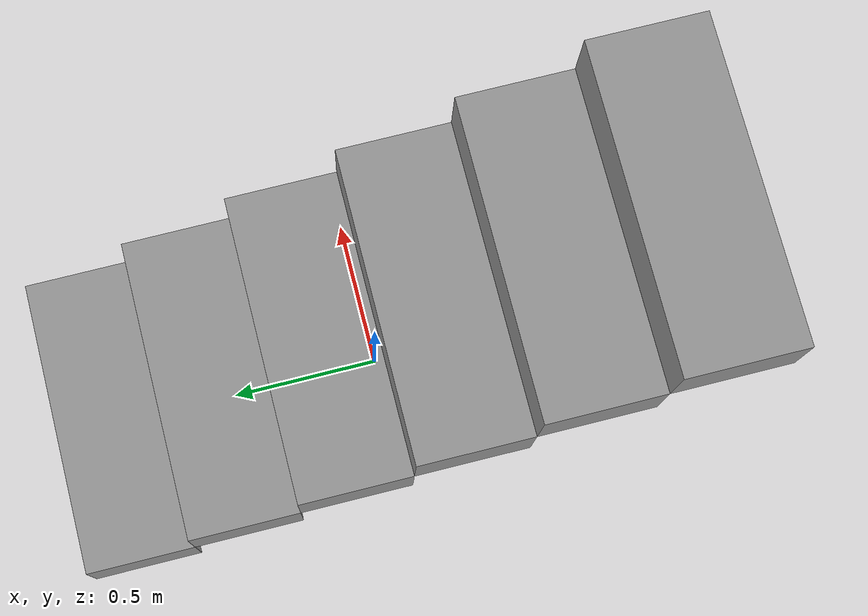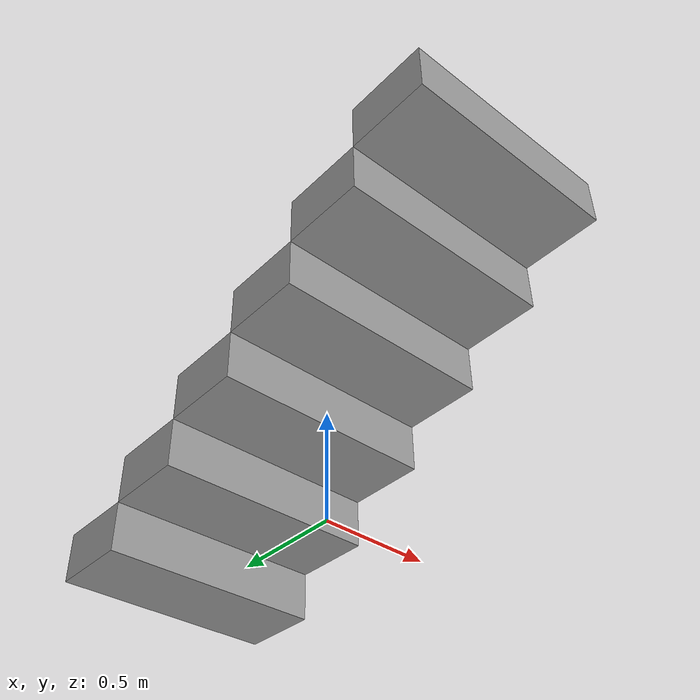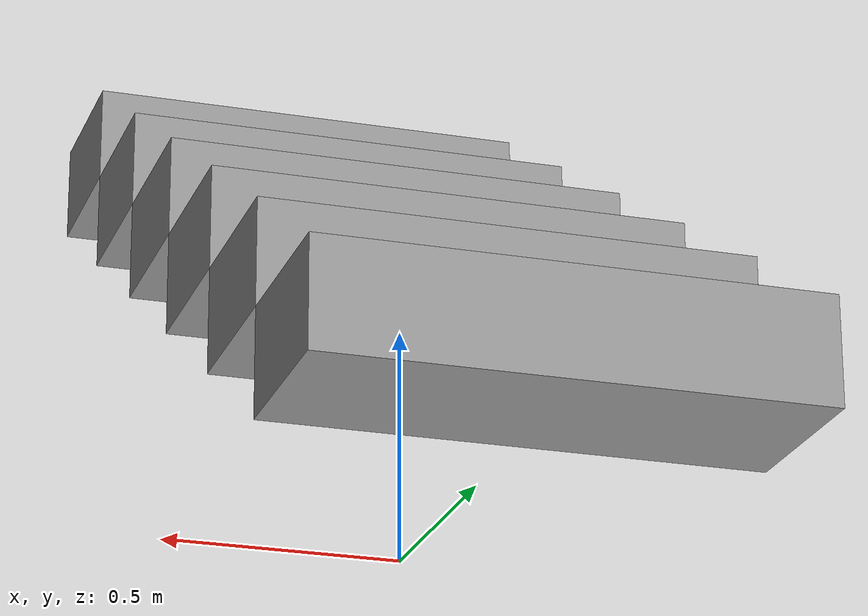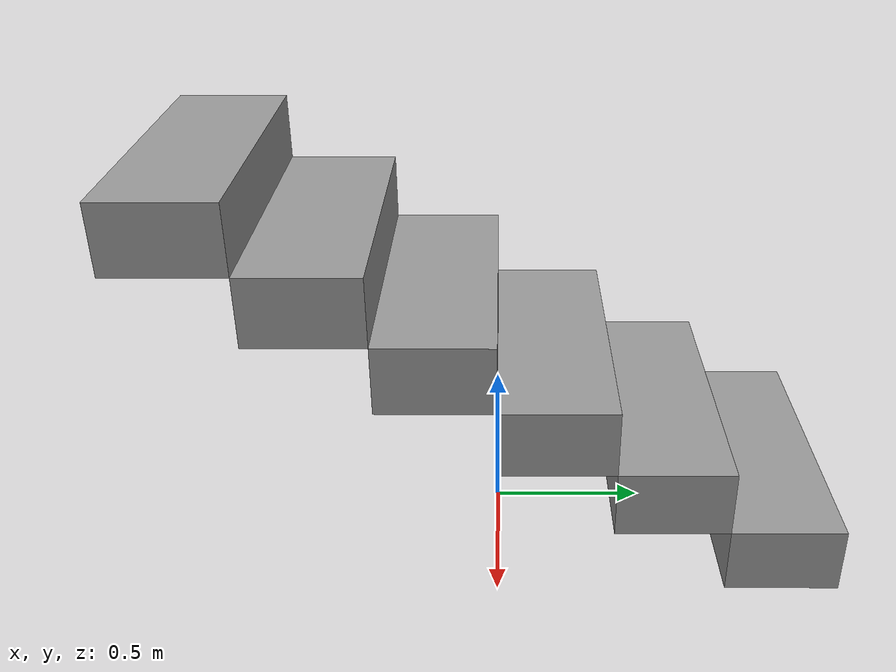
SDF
<?xml version='1.0'?>
<sdf version='1.6'>
  <model name='stairs45'>
    <pose frame=''>0 0 0 0 -0 0</pose>
    <link name='Stairs_1'>
      <visual name='Stairs_1_Visual_0'>
        <pose frame=''>0 0.916667 0.110417 0 -0 0</pose>
        <geometry>
          <box>
            <size>1 0.366667 0.220833</size>
          </box>
        </geometry>
        <material>
          <script>
            <uri>file://media/materials/scripts/gazebo.material</uri>
            <name>Gazebo/Grey</name>
          </script>
          <ambient>1 1 1 1</ambient>
        </material>
        <meta>
          <layer>0</layer>
        </meta>
      </visual>
      <collision name='Stairs_1_Collision_0'>
        <geometry>
          <box>
            <size>1 0.366667 0.220833</size>
          </box>
        </geometry>
        <pose frame=''>0 0.916667 0.110417 0 -0 0</pose>
      </collision>
      <visual name='Stairs_1_Visual_1'>
        <pose frame=''>0 0.55 0.33125 0 -0 0</pose>
        <geometry>
          <box>
            <size>1 0.366667 0.220833</size>
          </box>
        </geometry>
        <material>
          <script>
            <uri>file://media/materials/scripts/gazebo.material</uri>
            <name>Gazebo/Grey</name>
          </script>
          <ambient>1 1 1 1</ambient>
        </material>
        <meta>
          <layer>0</layer>
        </meta>
      </visual>
      <collision name='Stairs_1_Collision_1'>
        <geometry>
          <box>
            <size>1 0.366667 0.220833</size>
          </box>
        </geometry>
        <pose frame=''>0 0.55 0.33125 0 -0 0</pose>
      </collision>
      <visual name='Stairs_1_Visual_2'>
        <pose frame=''>0 0.183333 0.552083 0 -0 0</pose>
        <geometry>
          <box>
            <size>1 0.366667 0.220833</size>
          </box>
        </geometry>
        <material>
          <script>
            <uri>file://media/materials/scripts/gazebo.material</uri>
            <name>Gazebo/Grey</name>
          </script>
          <ambient>1 1 1 1</ambient>
        </material>
        <meta>
          <layer>0</layer>
        </meta>
      </visual>
      <collision name='Stairs_1_Collision_2'>
        <geometry>
          <box>
            <size>1 0.366667 0.220833</size>
          </box>
        </geometry>
        <pose frame=''>0 0.183333 0.552083 0 -0 0</pose>
      </collision>
      <visual name='Stairs_1_Visual_3'>
        <pose frame=''>0 -0.183333 0.772917 0 -0 0</pose>
        <geometry>
          <box>
            <size>1 0.366667 0.220833</size>
          </box>
        </geometry>
        <material>
          <script>
            <uri>file://media/materials/scripts/gazebo.material</uri>
            <name>Gazebo/Grey</name>
          </script>
          <ambient>1 1 1 1</ambient>
        </material>
        <meta>
          <layer>0</layer>
        </meta>
      </visual>
      <collision name='Stairs_1_Collision_3'>
        <geometry>
          <box>
            <size>1 0.366667 0.220833</size>
          </box>
        </geometry>
        <pose frame=''>0 -0.183333 0.772917 0 -0 0</pose>
      </collision>
      <visual name='Stairs_1_Visual_4'>
        <pose frame=''>0 -0.55 0.99375 0 -0 0</pose>
        <geometry>
          <box>
            <size>1 0.366667 0.220833</size>
          </box>
        </geometry>
        <material>
          <script>
            <uri>file://media/materials/scripts/gazebo.material</uri>
            <name>Gazebo/Grey</name>
          </script>
          <ambient>1 1 1 1</ambient>
        </material>
        <meta>
          <layer>0</layer>
        </meta>
      </visual>
      <collision name='Stairs_1_Collision_4'>
        <geometry>
          <box>
            <size>1 0.366667 0.220833</size>
          </box>
        </geometry>
        <pose frame=''>0 -0.55 0.99375 0 -0 0</pose>
      </collision>
      <visual name='Stairs_1_Visual_5'>
        <pose frame=''>0 -0.916667 1.21458 0 -0 0</pose>
        <geometry>
          <box>
            <size>1 0.366667 0.220833</size>
          </box>
        </geometry>
        <material>
          <script>
            <uri>file://media/materials/scripts/gazebo.material</uri>
            <name>Gazebo/Grey</name>
          </script>
          <ambient>1 1 1 1</ambient>
        </material>
        <meta>
          <layer>0</layer>
        </meta>
      </visual>
      <collision name='Stairs_1_Collision_5'>
        <geometry>
          <box>
            <size>1 0.366667 0.220833</size>
          </box>
        </geometry>
        <pose frame=''>0 -0.916667 1.21458 0 -0 0</pose>
      </collision>
    </link>
    <static>1</static>
  </model>
</sdf>
